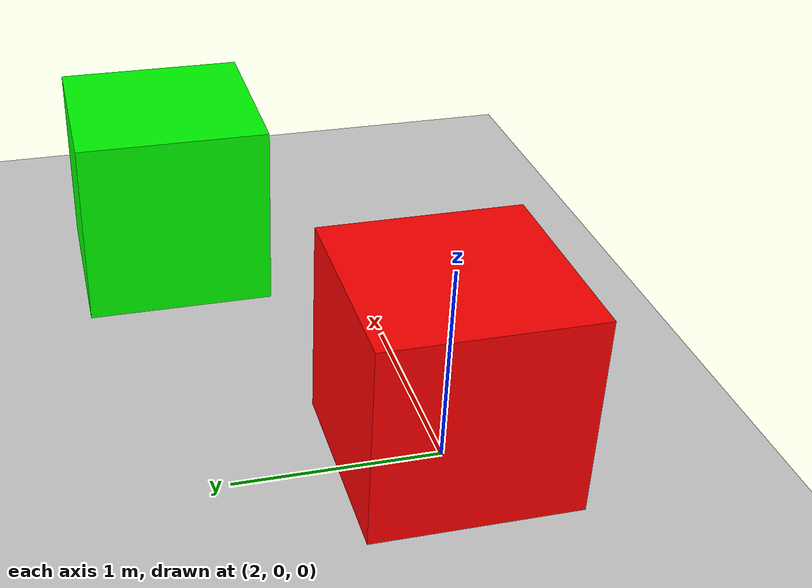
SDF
<?xml version="1.0"?>
<sdf version="1.6">
  <world name="simple_world">

    <!-- 全局设置 -->
    <include>
      <uri>model://ground_plane</uri>
    </include>

    <include>
      <uri>model://sun</uri>
    </include>

    <!-- 障碍物 1 -->
    <model name="box1">
      <static>true</static>
      <pose>2 0 0.5 0 0 0</pose>
      <link name="link">
        <collision name="collision">
          <geometry>
            <box>
              <size>1 1 1</size>
            </box>
          </geometry>
        </collision>
        <visual name="visual">
          <geometry>
            <box>
              <size>1 1 1</size>
            </box>
          </geometry>
          <material>
            <ambient>1 0 0 1</ambient>
            <diffuse>1 0 0 1</diffuse>
          </material>
        </visual>
      </link>
    </model>

    <!-- 障碍物 2 -->
    <model name="box2">
      <static>true</static>
      <pose>4 1 0.5 0 0 0</pose>
      <link name="link">
        <collision name="collision">
          <geometry>
            <box>
              <size>1 1 1</size>
            </box>
          </geometry>
        </collision>
        <visual name="visual">
          <geometry>
            <box>
              <size>1 1 1</size>
            </box>
          </geometry>
          <material>
            <ambient>0 1 0 1</ambient>
            <diffuse>0 1 0 1</diffuse>
          </material>
        </visual>
      </link>
    </model>

  </world>
</sdf>
